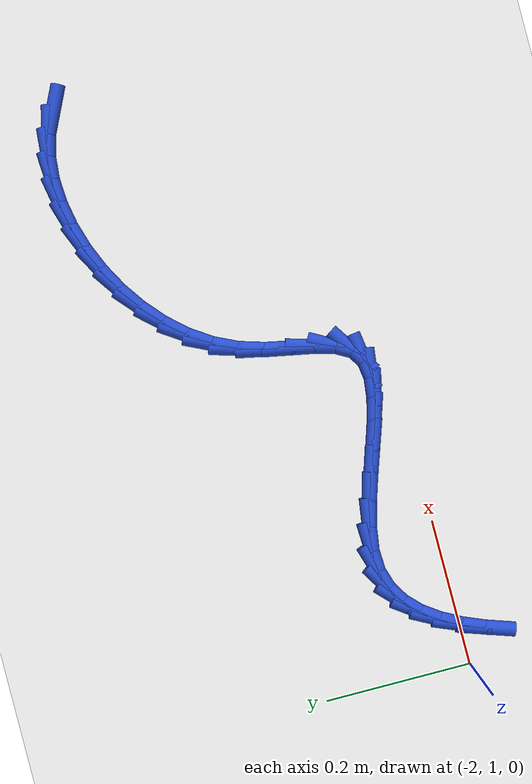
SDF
<sdf version="1.6">
 <world name="default">
  <model name="ground_plane">
   <static>1</static>
   <link name="link">
    <collision name="collision">
     <geometry><plane><normal>0 0 1</normal><size>100 100</size></plane></geometry>
     <surface><friction><ode><mu>100</mu><mu2>50</mu2></ode></friction></surface>
    </collision>
    <visual name="visual">
     <cast_shadows>0</cast_shadows>
     <geometry><plane><normal>0 0 1</normal><size>100 100</size></plane></geometry>
     <material>
      <script><uri>file://media/materials/scripts/gazebo.material</uri><name>Gazebo/WhiteGlow</name></script>
     </material>
    </visual>
   </link>
  </model>
  <model name="line">
   <link name="link_67">
    <pose>-1.1397376196013655 1.3569619121106788 0.01 0 1.57 -0.44394112524364343</pose>
    <collision name="collision">
     <geometry><cylinder><radius>0.01</radius><length>0.08</length></cylinder></geometry>
    </collision>
    <visual name="visual">
     <material>
      <script><name>Gazebo/Blue</name><uri>file://media/materials/scripts/gazebo.material</uri></script>
     </material>
     <geometry><cylinder><radius>0.01</radius><length>0.08</length></cylinder></geometry>
    </visual>
   </link>
   <link name="link_68">
    <pose>-1.1656799701055482 1.3693002007829413 0.01 0 1.57 -0.24941884112325433</pose>
    <collision name="collision">
     <geometry><cylinder><radius>0.01</radius><length>0.08</length></cylinder></geometry>
    </collision>
    <visual name="visual">
     <material>
      <script><name>Gazebo/Blue</name><uri>file://media/materials/scripts/gazebo.material</uri></script>
     </material>
     <geometry><cylinder><radius>0.01</radius><length>0.08</length></cylinder></geometry>
    </visual>
   </link>
   <link name="link_69">
    <pose>-1.1945965823613178 1.3766659259325518 0.01 0 1.57 -0.08385405090683544</pose>
    <collision name="collision">
     <geometry><cylinder><radius>0.01</radius><length>0.08</length></cylinder></geometry>
    </collision>
    <visual name="visual">
     <material>
      <script><name>Gazebo/Blue</name><uri>file://media/materials/scripts/gazebo.material</uri></script>
     </material>
     <geometry><cylinder><radius>0.01</radius><length>0.08</length></cylinder></geometry>
    </visual>
   </link>
   <link name="link_70">
    <pose>-1.2257849019149876 1.3792873399092904 0.01 0 1.57 0.05777418771580277</pose>
    <collision name="collision">
     <geometry><cylinder><radius>0.01</radius><length>0.08</length></cylinder></geometry>
    </collision>
    <visual name="visual">
     <material>
      <script><name>Gazebo/Blue</name><uri>file://media/materials/scripts/gazebo.material</uri></script>
     </material>
     <geometry><cylinder><radius>0.01</radius><length>0.08</length></cylinder></geometry>
    </visual>
   </link>
   <link name="link_71">
    <pose>-1.2585423743128736 1.3773926950629398 0.01 0 1.57 0.1818387510161537</pose>
    <collision name="collision">
     <geometry><cylinder><radius>0.01</radius><length>0.08</length></cylinder></geometry>
    </collision>
    <visual name="visual">
     <material>
      <script><name>Gazebo/Blue</name><uri>file://media/materials/scripts/gazebo.material</uri></script>
     </material>
     <geometry><cylinder><radius>0.01</radius><length>0.08</length></cylinder></geometry>
    </visual>
   </link>
   <link name="link_72">
    <pose>-1.2921664451012878 1.3712102437432785 0.01 0 1.57 0.2943208391136237</pose>
    <collision name="collision">
     <geometry><cylinder><radius>0.01</radius><length>0.08</length></cylinder></geometry>
    </collision>
    <visual name="visual">
     <material>
      <script><name>Gazebo/Blue</name><uri>file://media/materials/scripts/gazebo.material</uri></script>
     </material>
     <geometry><cylinder><radius>0.01</radius><length>0.08</length></cylinder></geometry>
    </visual>
   </link>
   <link name="link_73">
    <pose>-1.3259545598265443 1.3609682383000878 0.01 0 1.57 0.40039796299079444</pose>
    <collision name="collision">
     <geometry><cylinder><radius>0.01</radius><length>0.08</length></cylinder></geometry>
    </collision>
    <visual name="visual">
     <material>
      <script><name>Gazebo/Blue</name><uri>file://media/materials/scripts/gazebo.material</uri></script>
     </material>
     <geometry><cylinder><radius>0.01</radius><length>0.08</length></cylinder></geometry>
    </visual>
   </link>
   <link name="link_74">
    <pose>-1.3592041640349577 1.3468949310831493 0.01 0 1.57 0.5045604184586252</pose>
    <collision name="collision">
     <geometry><cylinder><radius>0.01</radius><length>0.08</length></cylinder></geometry>
    </collision>
    <visual name="visual">
     <material>
      <script><name>Gazebo/Blue</name><uri>file://media/materials/scripts/gazebo.material</uri></script>
     </material>
     <geometry><cylinder><radius>0.01</radius><length>0.08</length></cylinder></geometry>
    </visual>
   </link>
   <link name="link_75">
    <pose>-1.3912127032728399 1.3292185744422418 0.01 0 1.57 0.6108534142282459</pose>
    <collision name="collision">
     <geometry><cylinder><radius>0.01</radius><length>0.08</length></cylinder></geometry>
    </collision>
    <visual name="visual">
     <material>
      <script><name>Gazebo/Blue</name><uri>file://media/materials/scripts/gazebo.material</uri></script>
     </material>
     <geometry><cylinder><radius>0.01</radius><length>0.08</length></cylinder></geometry>
    </visual>
   </link>
   <link name="link_76">
    <pose>-1.4212776230865058 1.308167420727147 0.01 0 1.57 0.7230754647963488</pose>
    <collision name="collision">
     <geometry><cylinder><radius>0.01</radius><length>0.08</length></cylinder></geometry>
    </collision>
    <visual name="visual">
     <material>
      <script><name>Gazebo/Blue</name><uri>file://media/materials/scripts/gazebo.material</uri></script>
     </material>
     <geometry><cylinder><radius>0.01</radius><length>0.08</length></cylinder></geometry>
    </visual>
   </link>
   <link name="link_77">
    <pose>-1.4486963690222692 1.2839697222876454 0.01 0 1.57 0.84483599541593</pose>
    <collision name="collision">
     <geometry><cylinder><radius>0.01</radius><length>0.08</length></cylinder></geometry>
    </collision>
    <visual name="visual">
     <material>
      <script><name>Gazebo/Blue</name><uri>file://media/materials/scripts/gazebo.material</uri></script>
     </material>
     <geometry><cylinder><radius>0.01</radius><length>0.08</length></cylinder></geometry>
    </visual>
   </link>
   <link name="link_78">
    <pose>-1.4727663866264433 1.2568537314735175 0.01 0 1.57 0.9793628854467564</pose>
    <collision name="collision">
     <geometry><cylinder><radius>0.01</radius><length>0.08</length></cylinder></geometry>
    </collision>
    <visual name="visual">
     <material>
      <script><name>Gazebo/Blue</name><uri>file://media/materials/scripts/gazebo.material</uri></script>
     </material>
     <geometry><cylinder><radius>0.01</radius><length>0.08</length></cylinder></geometry>
    </visual>
   </link>
   <link name="link_79">
    <pose>-1.4927851214453427 1.2270477006345446 0.01 0 1.57 1.1289248704223778</pose>
    <collision name="collision">
     <geometry><cylinder><radius>0.01</radius><length>0.08</length></cylinder></geometry>
    </collision>
    <visual name="visual">
     <material>
      <script><name>Gazebo/Blue</name><uri>file://media/materials/scripts/gazebo.material</uri></script>
     </material>
     <geometry><cylinder><radius>0.01</radius><length>0.08</length></cylinder></geometry>
    </visual>
   </link>
   <link name="link_80">
    <pose>-1.50805001902528 1.1947798821205067 0.01 0 1.57 1.27980571020308</pose>
    <collision name="collision">
     <geometry><cylinder><radius>0.01</radius><length>0.08</length></cylinder></geometry>
    </collision>
    <visual name="visual">
     <material>
      <script><name>Gazebo/Blue</name><uri>file://media/materials/scripts/gazebo.material</uri></script>
     </material>
     <geometry><cylinder><radius>0.01</radius><length>0.08</length></cylinder></geometry>
    </visual>
   </link>
   <link name="link_81">
    <pose>-1.518293949381536 1.1605755210458604 0.01 0 1.57 1.3693118766113808</pose>
    <collision name="collision">
     <geometry><cylinder><radius>0.01</radius><length>0.08</length></cylinder></geometry>
    </collision>
    <visual name="visual">
     <material>
      <script><name>Gazebo/Blue</name><uri>file://media/materials/scripts/gazebo.material</uri></script>
     </material>
     <geometry><cylinder><radius>0.01</radius><length>0.08</length></cylinder></geometry>
    </visual>
   </link>
   <link name="link_82">
    <pose>-1.525285102500981 1.1263481062928011 0.01 0 1.57 1.3820144777105212</pose>
    <collision name="collision">
     <geometry><cylinder><radius>0.01</radius><length>0.08</length></cylinder></geometry>
    </collision>
    <visual name="visual">
     <material>
      <script><name>Gazebo/Blue</name><uri>file://media/materials/scripts/gazebo.material</uri></script>
     </material>
     <geometry><cylinder><radius>0.01</radius><length>0.08</length></cylinder></geometry>
    </visual>
   </link>
   <link name="link_83">
    <pose>-1.5313858724589842 1.0944164193432817 0.01 0 1.57 1.3003674564243426</pose>
    <collision name="collision">
     <geometry><cylinder><radius>0.01</radius><length>0.08</length></cylinder></geometry>
    </collision>
    <visual name="visual">
     <material>
      <script><name>Gazebo/Blue</name><uri>file://media/materials/scripts/gazebo.material</uri></script>
     </material>
     <geometry><cylinder><radius>0.01</radius><length>0.08</length></cylinder></geometry>
    </visual>
   </link>
   <link name="link_84">
    <pose>-1.5389587245398615 1.067099290249198 0.01 0 1.57 1.0605879842798105</pose>
    <collision name="collision">
     <geometry><cylinder><radius>0.01</radius><length>0.08</length></cylinder></geometry>
    </collision>
    <visual name="visual">
     <material>
      <script><name>Gazebo/Blue</name><uri>file://media/materials/scripts/gazebo.material</uri></script>
     </material>
     <geometry><cylinder><radius>0.01</radius><length>0.08</length></cylinder></geometry>
    </visual>
   </link>
   <link name="link_85">
    <pose>-1.5503661240279298 1.046715549062447 0.01 0 1.57 0.5879420920489372</pose>
    <collision name="collision">
     <geometry><cylinder><radius>0.01</radius><length>0.08</length></cylinder></geometry>
    </collision>
    <visual name="visual">
     <material>
      <script><name>Gazebo/Blue</name><uri>file://media/materials/scripts/gazebo.material</uri></script>
     </material>
     <geometry><cylinder><radius>0.01</radius><length>0.08</length></cylinder></geometry>
    </visual>
   </link>
   <link name="link_86">
    <pose>-1.567643310483354 1.0351989348190018 0.01 0 1.57 0.14391412453492888</pose>
    <collision name="collision">
     <geometry><cylinder><radius>0.01</radius><length>0.08</length></cylinder></geometry>
    </collision>
    <visual name="visual">
     <material>
      <script><name>Gazebo/Blue</name><uri>file://media/materials/scripts/gazebo.material</uri></script>
     </material>
     <geometry><cylinder><radius>0.01</radius><length>0.08</length></cylinder></geometry>
    </visual>
   </link>
   <link name="link_87">
    <pose>-1.5906060778515918 1.0318712630308802 0.01 0 1.57 -0.11201613804050921</pose>
    <collision name="collision">
     <geometry><cylinder><radius>0.01</radius><length>0.08</length></cylinder></geometry>
    </collision>
    <visual name="visual">
     <material>
      <script><name>Gazebo/Blue</name><uri>file://media/materials/scripts/gazebo.material</uri></script>
     </material>
     <geometry><cylinder><radius>0.01</radius><length>0.08</length></cylinder></geometry>
    </visual>
   </link>
   <link name="link_88">
    <pose>-1.6181483045828933 1.034969405856194 0.01 0 1.57 -0.24510492115483984</pose>
    <collision name="collision">
     <geometry><cylinder><radius>0.01</radius><length>0.08</length></cylinder></geometry>
    </collision>
    <visual name="visual">
     <material>
      <script><name>Gazebo/Blue</name><uri>file://media/materials/scripts/gazebo.material</uri></script>
     </material>
     <geometry><cylinder><radius>0.01</radius><length>0.08</length></cylinder></geometry>
    </visual>
   </link>
   <link name="link_89">
    <pose>-1.6491608718122848 1.042726708104566 0.01 0 1.57 -0.30889259791357343</pose>
    <collision name="collision">
     <geometry><cylinder><radius>0.01</radius><length>0.08</length></cylinder></geometry>
    </collision>
    <visual name="visual">
     <material>
      <script><name>Gazebo/Blue</name><uri>file://media/materials/scripts/gazebo.material</uri></script>
     </material>
     <geometry><cylinder><radius>0.01</radius><length>0.08</length></cylinder></geometry>
    </visual>
   </link>
   <link name="link_90">
    <pose>-1.6825346606747962 1.053376514585618 0.01 0 1.57 -0.32781234569823947</pose>
    <collision name="collision">
     <geometry><cylinder><radius>0.01</radius><length>0.08</length></cylinder></geometry>
    </collision>
    <visual name="visual">
     <material>
      <script><name>Gazebo/Blue</name><uri>file://media/materials/scripts/gazebo.material</uri></script>
     </material>
     <geometry><cylinder><radius>0.01</radius><length>0.08</length></cylinder></geometry>
    </visual>
   </link>
   <link name="link_91">
    <pose>-1.7171605523054536 1.0651521701089726 0.01 0 1.57 -0.30993275770164147</pose>
    <collision name="collision">
     <geometry><cylinder><radius>0.01</radius><length>0.08</length></cylinder></geometry>
    </collision>
    <visual name="visual">
     <material>
      <script><name>Gazebo/Blue</name><uri>file://media/materials/scripts/gazebo.material</uri></script>
     </material>
     <geometry><cylinder><radius>0.01</radius><length>0.08</length></cylinder></geometry>
    </visual>
   </link>
   <link name="link_92">
    <pose>-1.7519294278392865 1.0762870194842538 0.01 0 1.57 -0.25266799511501875</pose>
    <collision name="collision">
     <geometry><cylinder><radius>0.01</radius><length>0.08</length></cylinder></geometry>
    </collision>
    <visual name="visual">
     <material>
      <script><name>Gazebo/Blue</name><uri>file://media/materials/scripts/gazebo.material</uri></script>
     </material>
     <geometry><cylinder><radius>0.01</radius><length>0.08</length></cylinder></geometry>
    </visual>
   </link>
   <link name="link_93">
    <pose>-1.7857321684113225 1.0850144075210824 0.01 0 1.57 -0.14253864544142186</pose>
    <collision name="collision">
     <geometry><cylinder><radius>0.01</radius><length>0.08</length></cylinder></geometry>
    </collision>
    <visual name="visual">
     <material>
      <script><name>Gazebo/Blue</name><uri>file://media/materials/scripts/gazebo.material</uri></script>
     </material>
     <geometry><cylinder><radius>0.01</radius><length>0.08</length></cylinder></geometry>
    </visual>
   </link>
   <link name="link_94">
    <pose>-1.817459655156589 1.0895676790290814 0.01 0 1.57 0.04665474104377419</pose>
    <collision name="collision">
     <geometry><cylinder><radius>0.01</radius><length>0.08</length></cylinder></geometry>
    </collision>
    <visual name="visual">
     <material>
      <script><name>Gazebo/Blue</name><uri>file://media/materials/scripts/gazebo.material</uri></script>
     </material>
     <geometry><cylinder><radius>0.01</radius><length>0.08</length></cylinder></geometry>
    </visual>
   </link>
   <link name="link_95">
    <pose>-1.8460346643944536 1.0882335512492514 0.01 0 1.57 0.3002624172072909</pose>
    <collision name="collision">
     <geometry><cylinder><radius>0.01</radius><length>0.08</length></cylinder></geometry>
    </collision>
    <visual name="visual">
     <material>
      <script><name>Gazebo/Blue</name><uri>file://media/materials/scripts/gazebo.material</uri></script>
     </material>
     <geometry><cylinder><radius>0.01</radius><length>0.08</length></cylinder></geometry>
    </visual>
   </link>
   <link name="link_96">
    <pose>-1.871084424124321 1.080477549437988 0.01 0 1.57 0.5556231904699138</pose>
    <collision name="collision">
     <geometry><cylinder><radius>0.01</radius><length>0.08</length></cylinder></geometry>
    </collision>
    <visual name="visual">
     <material>
      <script><name>Gazebo/Blue</name><uri>file://media/materials/scripts/gazebo.material</uri></script>
     </material>
     <geometry><cylinder><radius>0.01</radius><length>0.08</length></cylinder></geometry>
    </visual>
   </link>
   <link name="link_97">
    <pose>-1.8929247969451959 1.0669175390457546 0.01 0 1.57 0.7780322936540738</pose>
    <collision name="collision">
     <geometry><cylinder><radius>0.01</radius><length>0.08</length></cylinder></geometry>
    </collision>
    <visual name="visual">
     <material>
      <script><name>Gazebo/Blue</name><uri>file://media/materials/scripts/gazebo.material</uri></script>
     </material>
     <geometry><cylinder><radius>0.01</radius><length>0.08</length></cylinder></geometry>
    </visual>
   </link>
   <link name="link_98">
    <pose>-1.911900376712923 1.048219463534349 0.01 0 1.57 0.9532601589361375</pose>
    <collision name="collision">
     <geometry><cylinder><radius>0.01</radius><length>0.08</length></cylinder></geometry>
    </collision>
    <visual name="visual">
     <material>
      <script><name>Gazebo/Blue</name><uri>file://media/materials/scripts/gazebo.material</uri></script>
     </material>
     <geometry><cylinder><radius>0.01</radius><length>0.08</length></cylinder></geometry>
    </visual>
   </link>
   <link name="link_99">
    <pose>-1.9283557572833476 1.025049266365569 0.01 0 1.57 1.0839502350235661</pose>
    <collision name="collision">
     <geometry><cylinder><radius>0.01</radius><length>0.08</length></cylinder></geometry>
    </collision>
    <visual name="visual">
     <material>
      <script><name>Gazebo/Blue</name><uri>file://media/materials/scripts/gazebo.material</uri></script>
     </material>
     <geometry><cylinder><radius>0.01</radius><length>0.08</length></cylinder></geometry>
    </visual>
   </link>
   <link name="link_100">
    <pose>-1.942635532512316 0.9980728910012117 0.01 0 1.57 1.1788327812139152</pose>
    <collision name="collision">
     <geometry><cylinder><radius>0.01</radius><length>0.08</length></cylinder></geometry>
    </collision>
    <visual name="visual">
     <material>
      <script><name>Gazebo/Blue</name><uri>file://media/materials/scripts/gazebo.material</uri></script>
     </material>
     <geometry><cylinder><radius>0.01</radius><length>0.08</length></cylinder></geometry>
    </visual>
   </link>
   <link name="link_101">
    <pose>-1.955084296255673 0.9679562809030746 0.01 0 1.57 1.246322306157445</pose>
    <collision name="collision">
     <geometry><cylinder><radius>0.01</radius><length>0.08</length></cylinder></geometry>
    </collision>
    <visual name="visual">
     <material>
      <script><name>Gazebo/Blue</name><uri>file://media/materials/scripts/gazebo.material</uri></script>
     </material>
     <geometry><cylinder><radius>0.01</radius><length>0.08</length></cylinder></geometry>
    </visual>
   </link>
  </model>
 </world>
</sdf>
